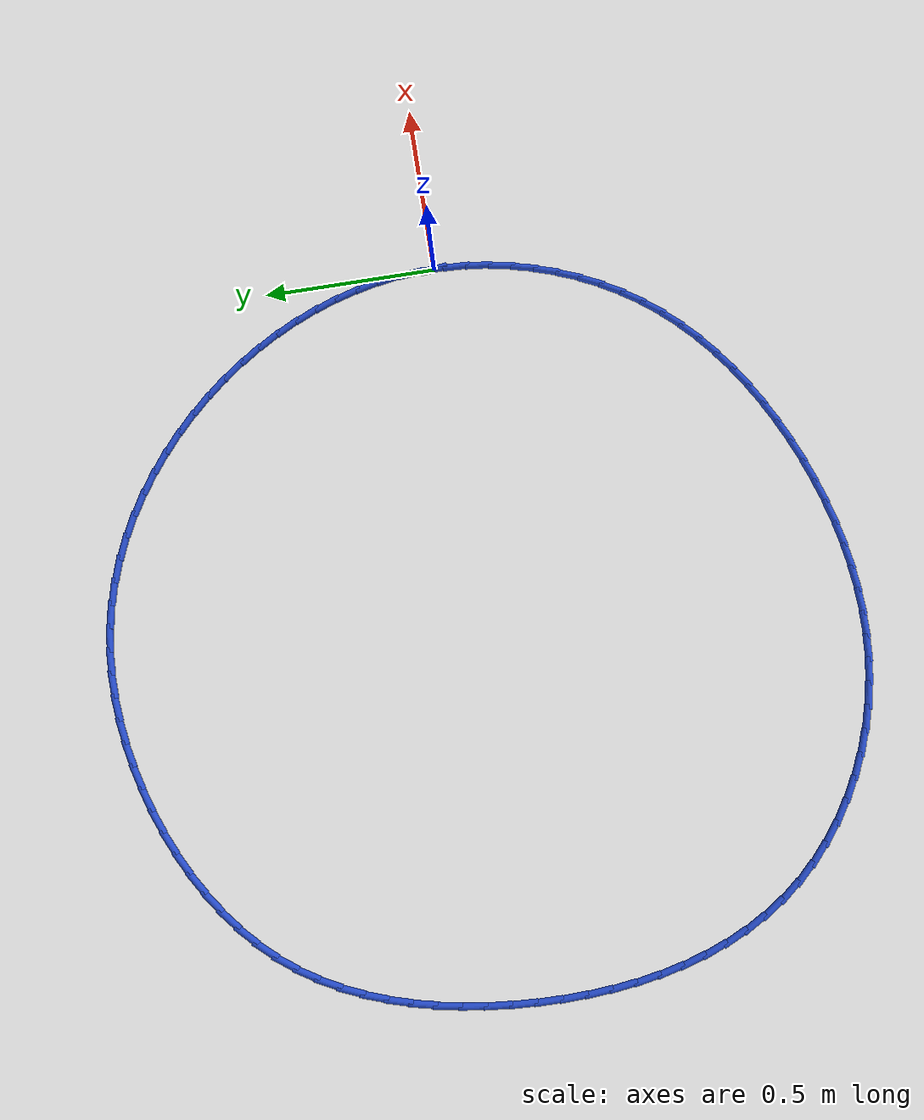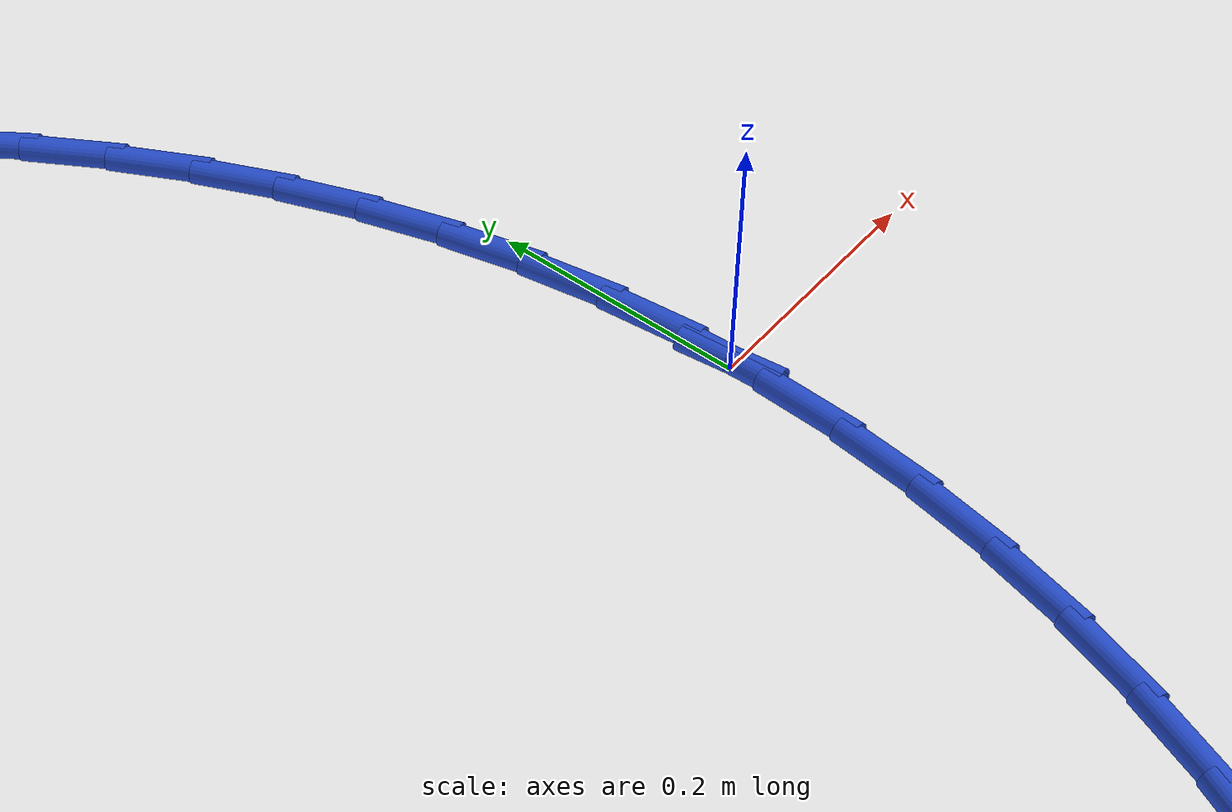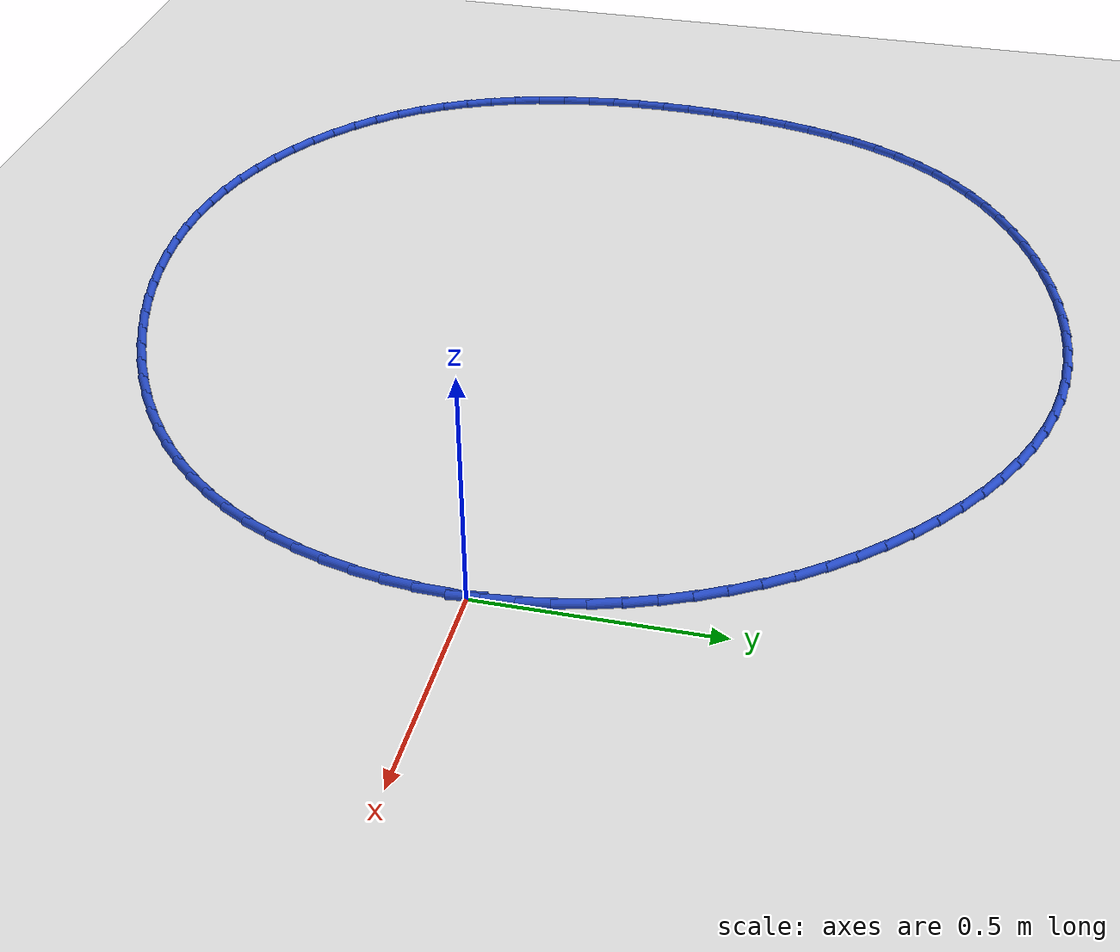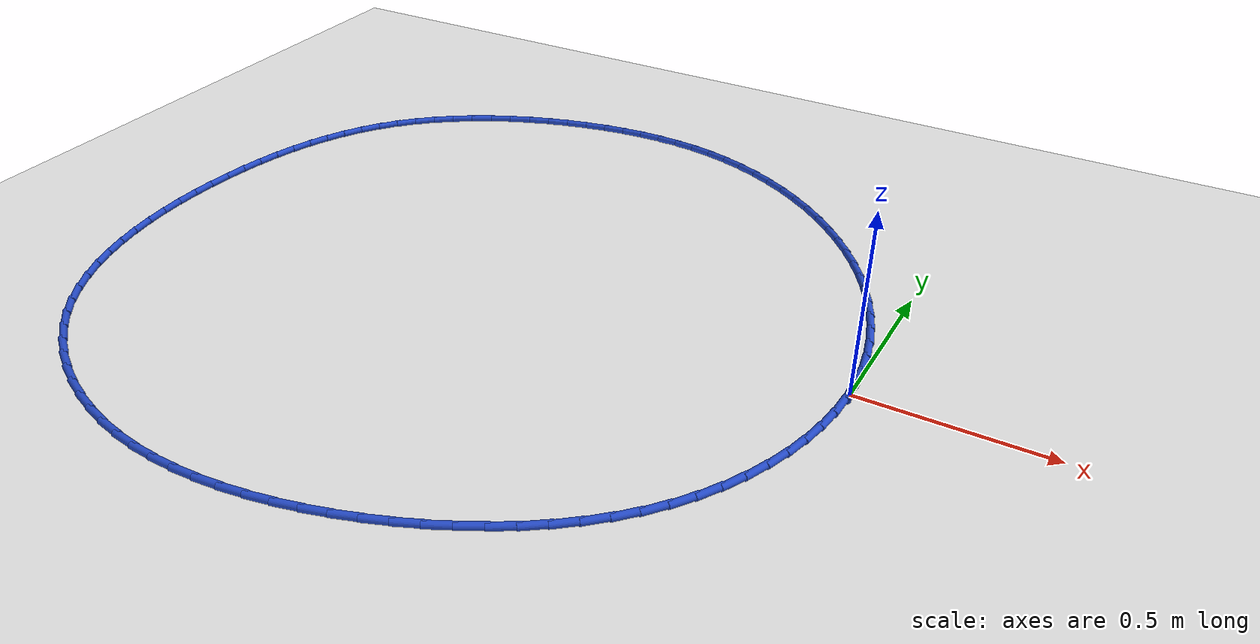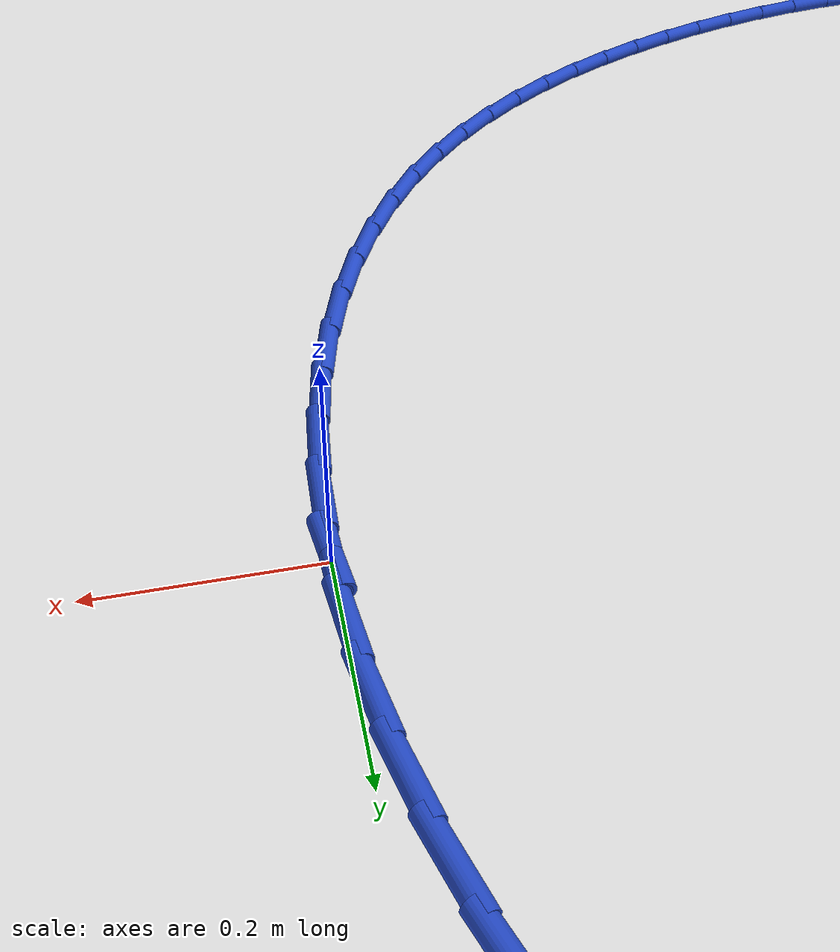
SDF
<sdf version="1.6">
 <world name="default">
  <light name="sun" type="directional">
   <pose>0 0 10 0 -0 0</pose>
   <diffuse>0.8 0.8 0.8 1</diffuse>
   <specular>0.2 0.2 0.2 1</specular>
   <attenuation>
    <range>1000</range>
    <constant>0.9</constant>
    <linear>0.01</linear>
    <quadratic>0.001</quadratic>
   </attenuation>
   <direction>-0.5 0.1 -0.9</direction>
  </light>
  <model name="ground_plane">
   <static>1</static>
   <link name="link">
    <collision name="collision">
     <geometry><plane><normal>0 0 1</normal><size>100 100</size></plane></geometry>
     <surface><friction><ode><mu>100</mu><mu2>50</mu2></ode></friction></surface>
    </collision>
    <visual name="visual">
     <cast_shadows>0</cast_shadows>
     <geometry><plane><normal>0 0 1</normal><size>100 100</size></plane></geometry>
     <material>
      <script><uri>file://media/materials/scripts/gazebo.material</uri><name>Gazebo/WhiteGlow</name></script>
     </material>
    </visual>
   </link>
  </model>
  <gravity>0 0 -9.8</gravity>
  <magnetic_field>6e-06 2.3e-05 -4.2e-05</magnetic_field>
  <atmosphere type="adiabatic"/>
  <physics name="default_physics" default="0" type="ode">
   <max_step_size>0.001</max_step_size>
   <real_time_factor>1</real_time_factor>
   <real_time_update_rate>1000</real_time_update_rate>
  </physics>
  <scene><ambient>0.4 0.4 0.4 1</ambient><background>0.7 0.7 0.7 1</background><shadows>1</shadows></scene>
  <spherical_coordinates>
   <surface_model>EARTH_WGS84</surface_model>
   <latitude_deg>0</latitude_deg>
   <longitude_deg>0</longitude_deg>
   <elevation>0</elevation>
   <heading_deg>0</heading_deg>
  </spherical_coordinates>
  <model name="line">
   <link name="link_0">
    <pose>3.8163916471489756e-17 -8.326672684688674e-17 0.01 0 1.57 -1.530909037281265</pose>
    <collision name="collision">
     <geometry><cylinder><radius>0.01</radius><length>0.08</length></cylinder></geometry>
    </collision>
    <visual name="visual">
     <material>
      <script><name>Gazebo/Blue</name><uri>file://media/materials/scripts/gazebo.material</uri></script>
     </material>
     <geometry><cylinder><radius>0.01</radius><length>0.08</length></cylinder></geometry>
    </visual>
   </link>
   <link name="link_1">
    <pose>-0.002643952143250231 0.06625042349123367 0.01 0 1.57 -1.4620696341195842</pose>
    <collision name="collision">
     <geometry><cylinder><radius>0.01</radius><length>0.08</length></cylinder></geometry>
    </collision>
    <visual name="visual">
     <material>
      <script><name>Gazebo/Blue</name><uri>file://media/materials/scripts/gazebo.material</uri></script>
     </material>
     <geometry><cylinder><radius>0.01</radius><length>0.08</length></cylinder></geometry>
    </visual>
   </link>
   <link name="link_2">
    <pose>-0.009822926464760387 0.13201774421860038 0.01 0 1.57 -1.3948912525738417</pose>
    <collision name="collision">
     <geometry><cylinder><radius>0.01</radius><length>0.08</length></cylinder></geometry>
    </collision>
    <visual name="visual">
     <material>
      <script><name>Gazebo/Blue</name><uri>file://media/materials/scripts/gazebo.material</uri></script>
     </material>
     <geometry><cylinder><radius>0.01</radius><length>0.08</length></cylinder></geometry>
    </visual>
   </link>
   <link name="link_3">
    <pose>-0.021395329228872627 0.1971255633562332 0.01 0 1.57 -1.3293901156058123</pose>
    <collision name="collision">
     <geometry><cylinder><radius>0.01</radius><length>0.08</length></cylinder></geometry>
    </collision>
    <visual name="visual">
     <material>
      <script><name>Gazebo/Blue</name><uri>file://media/materials/scripts/gazebo.material</uri></script>
     </material>
     <geometry><cylinder><radius>0.01</radius><length>0.08</length></cylinder></geometry>
    </visual>
   </link>
   <link name="link_4">
    <pose>-0.03721956669992915 0.26139748207826524 0.01 0 1.57 -1.2655247972778039</pose>
    <collision name="collision">
     <geometry><cylinder><radius>0.01</radius><length>0.08</length></cylinder></geometry>
    </collision>
    <visual name="visual">
     <material>
      <script><name>Gazebo/Blue</name><uri>file://media/materials/scripts/gazebo.material</uri></script>
     </material>
     <geometry><cylinder><radius>0.01</radius><length>0.08</length></cylinder></geometry>
    </visual>
   </link>
   <link name="link_5">
    <pose>-0.057154045142272174 0.32465710155882976 0.01 0 1.57 -1.2032058143764963</pose>
    <collision name="collision">
     <geometry><cylinder><radius>0.01</radius><length>0.08</length></cylinder></geometry>
    </collision>
    <visual name="visual">
     <material>
      <script><name>Gazebo/Blue</name><uri>file://media/materials/scripts/gazebo.material</uri></script>
     </material>
     <geometry><cylinder><radius>0.01</radius><length>0.08</length></cylinder></geometry>
    </visual>
   </link>
   <link name="link_6">
    <pose>-0.08105717082024384 0.3867280229720598 0.01 0 1.57 -1.142305219174879</pose>
    <collision name="collision">
     <geometry><cylinder><radius>0.01</radius><length>0.08</length></cylinder></geometry>
    </collision>
    <visual name="visual">
     <material>
      <script><name>Gazebo/Blue</name><uri>file://media/materials/scripts/gazebo.material</uri></script>
     </material>
     <geometry><cylinder><radius>0.01</radius><length>0.08</length></cylinder></geometry>
    </visual>
   </link>
   <link name="link_7">
    <pose>-0.10878734999818647 0.4474338474920887 0.01 0 1.57 -1.0826655391313575</pose>
    <collision name="collision">
     <geometry><cylinder><radius>0.01</radius><length>0.08</length></cylinder></geometry>
    </collision>
    <visual name="visual">
     <material>
      <script><name>Gazebo/Blue</name><uri>file://media/materials/scripts/gazebo.material</uri></script>
     </material>
     <geometry><cylinder><radius>0.01</radius><length>0.08</length></cylinder></geometry>
    </visual>
   </link>
   <link name="link_8">
    <pose>-0.1402029889404421 0.5065981762930496 0.01 0 1.57 -1.024107704134413</pose>
    <collision name="collision">
     <geometry><cylinder><radius>0.01</radius><length>0.08</length></cylinder></geometry>
    </collision>
    <visual name="visual">
     <material>
      <script><name>Gazebo/Blue</name><uri>file://media/materials/scripts/gazebo.material</uri></script>
     </material>
     <geometry><cylinder><radius>0.01</radius><length>0.08</length></cylinder></geometry>
    </visual>
   </link>
   <link name="link_9">
    <pose>-0.17516249391135308 0.5640446105490754 0.01 0 1.57 -0.966443917170568</pose>
    <collision name="collision">
     <geometry><cylinder><radius>0.01</radius><length>0.08</length></cylinder></geometry>
    </collision>
    <visual name="visual">
     <material>
      <script><name>Gazebo/Blue</name><uri>file://media/materials/scripts/gazebo.material</uri></script>
     </material>
     <geometry><cylinder><radius>0.01</radius><length>0.08</length></cylinder></geometry>
    </visual>
   </link>
   <link name="link_10">
    <pose>-0.21352241617242845 0.6195947874247035 0.01 0 1.57 -0.9095268368817235</pose>
    <collision name="collision">
     <geometry><cylinder><radius>0.01</radius><length>0.08</length></cylinder></geometry>
    </collision>
    <visual name="visual">
     <material>
      <script><name>Gazebo/Blue</name><uri>file://media/materials/scripts/gazebo.material</uri></script>
     </material>
     <geometry><cylinder><radius>0.01</radius><length>0.08</length></cylinder></geometry>
    </visual>
   </link>
   <link name="link_11">
    <pose>-0.2551088539434642 0.6730381015104505 0.01 0 1.57 -0.8530524095180355</pose>
    <collision name="collision">
     <geometry><cylinder><radius>0.01</radius><length>0.08</length></cylinder></geometry>
    </collision>
    <visual name="visual">
     <material>
      <script><name>Gazebo/Blue</name><uri>file://media/materials/scripts/gazebo.material</uri></script>
     </material>
     <geometry><cylinder><radius>0.01</radius><length>0.08</length></cylinder></geometry>
    </visual>
   </link>
   <link name="link_12">
    <pose>-0.29972300200922686 0.7241375805447174 0.01 0 1.57 -0.7966062513180978</pose>
    <collision name="collision">
     <geometry><cylinder><radius>0.01</radius><length>0.08</length></cylinder></geometry>
    </collision>
    <visual name="visual">
     <material>
      <script><name>Gazebo/Blue</name><uri>file://media/materials/scripts/gazebo.material</uri></script>
     </material>
     <geometry><cylinder><radius>0.01</radius><length>0.08</length></cylinder></geometry>
    </visual>
   </link>
   <link name="link_13">
    <pose>-0.34716532417411783 0.7726554783304563 0.01 0 1.57 -0.7397745130219954</pose>
    <collision name="collision">
     <geometry><cylinder><radius>0.01</radius><length>0.08</length></cylinder></geometry>
    </collision>
    <visual name="visual">
     <material>
      <script><name>Gazebo/Blue</name><uri>file://media/materials/scripts/gazebo.material</uri></script>
     </material>
     <geometry><cylinder><radius>0.01</radius><length>0.08</length></cylinder></geometry>
    </visual>
   </link>
   <link name="link_14">
    <pose>-0.397236284242538 0.8183540486706188 0.01 0 1.57 -0.6821466853637174</pose>
    <collision name="collision">
     <geometry><cylinder><radius>0.01</radius><length>0.08</length></cylinder></geometry>
    </collision>
    <visual name="visual">
     <material>
      <script><name>Gazebo/Blue</name><uri>file://media/materials/scripts/gazebo.material</uri></script>
     </material>
     <geometry><cylinder><radius>0.01</radius><length>0.08</length></cylinder></geometry>
    </visual>
   </link>
   <link name="link_15">
    <pose>-0.44973634601888834 0.8609955453681557 0.01 0 1.57 -0.6233168728572187</pose>
    <collision name="collision">
     <geometry><cylinder><radius>0.01</radius><length>0.08</length></cylinder></geometry>
    </collision>
    <visual name="visual">
     <material>
      <script><name>Gazebo/Blue</name><uri>file://media/materials/scripts/gazebo.material</uri></script>
     </material>
     <geometry><cylinder><radius>0.01</radius><length>0.08</length></cylinder></geometry>
    </visual>
   </link>
   <link name="link_16">
    <pose>-0.5044659733075701 0.9003422222260192 0.01 0 1.57 -0.5628867611481467</pose>
    <collision name="collision">
     <geometry><cylinder><radius>0.01</radius><length>0.08</length></cylinder></geometry>
    </collision>
    <visual name="visual">
     <material>
      <script><name>Gazebo/Blue</name><uri>file://media/materials/scripts/gazebo.material</uri></script>
     </material>
     <geometry><cylinder><radius>0.01</radius><length>0.08</length></cylinder></geometry>
    </visual>
   </link>
   <link name="link_17">
    <pose>-0.5612256299129844 0.9361563330471606 0.01 0 1.57 -0.5004711683062067</pose>
    <collision name="collision">
     <geometry><cylinder><radius>0.01</radius><length>0.08</length></cylinder></geometry>
    </collision>
    <visual name="visual">
     <material>
      <script><name>Gazebo/Blue</name><uri>file://media/materials/scripts/gazebo.material</uri></script>
     </material>
     <geometry><cylinder><radius>0.01</radius><length>0.08</length></cylinder></geometry>
    </visual>
   </link>
   <link name="link_18">
    <pose>-0.6198157796395322 0.9682001316345312 0.01 0 1.57 -0.43570712116881555</pose>
    <collision name="collision">
     <geometry><cylinder><radius>0.01</radius><length>0.08</length></cylinder></geometry>
    </collision>
    <visual name="visual">
     <material>
      <script><name>Gazebo/Blue</name><uri>file://media/materials/scripts/gazebo.material</uri></script>
     </material>
     <geometry><cylinder><radius>0.01</radius><length>0.08</length></cylinder></geometry>
    </visual>
   </link>
   <link name="link_19">
    <pose>-0.6800368862916144 0.9962358717910825 0.01 0 1.57 -0.36826736813479594</pose>
    <collision name="collision">
     <geometry><cylinder><radius>0.01</radius><length>0.08</length></cylinder></geometry>
    </collision>
    <visual name="visual">
     <material>
      <script><name>Gazebo/Blue</name><uri>file://media/materials/scripts/gazebo.material</uri></script>
     </material>
     <geometry><cylinder><radius>0.01</radius><length>0.08</length></cylinder></geometry>
    </visual>
   </link>
   <link name="link_20">
    <pose>-0.741689413673633 1.0200258073197668 0.01 0 1.57 -0.29787902295381585</pose>
    <collision name="collision">
     <geometry><cylinder><radius>0.01</radius><length>0.08</length></cylinder></geometry>
    </collision>
    <visual name="visual">
     <material>
      <script><name>Gazebo/Blue</name><uri>file://media/materials/scripts/gazebo.material</uri></script>
     </material>
     <geometry><cylinder><radius>0.01</radius><length>0.08</length></cylinder></geometry>
    </visual>
   </link>
   <link name="link_21">
    <pose>-0.8045738255899875 1.039332192023534 0.01 0 1.57 -0.22445217431897305</pose>
    <collision name="collision">
     <geometry><cylinder><radius>0.01</radius><length>0.08</length></cylinder></geometry>
    </collision>
    <visual name="visual">
     <material>
      <script><name>Gazebo/Blue</name><uri>file://media/materials/scripts/gazebo.material</uri></script>
     </material>
     <geometry><cylinder><radius>0.01</radius><length>0.08</length></cylinder></geometry>
    </visual>
   </link>
   <link name="link_22">
    <pose>-0.8684905688038664 1.0539243154360542 0.01 0 1.57 -0.15074133616258795</pose>
    <collision name="collision">
     <geometry><cylinder><radius>0.01</radius><length>0.08</length></cylinder></geometry>
    </collision>
    <visual name="visual">
     <material>
      <script><name>Gazebo/Blue</name><uri>file://media/materials/scripts/gazebo.material</uri></script>
     </material>
     <geometry><cylinder><radius>0.01</radius><length>0.08</length></cylinder></geometry>
    </visual>
   </link>
   <link name="link_23">
    <pose>-0.9332396351716259 1.0637592824634052 0.01 0 1.57 -0.07995076558486094</pose>
    <collision name="collision">
     <geometry><cylinder><radius>0.01</radius><length>0.08</length></cylinder></geometry>
    </collision>
    <visual name="visual">
     <material>
      <script><name>Gazebo/Blue</name><uri>file://media/materials/scripts/gazebo.material</uri></script>
     </material>
     <geometry><cylinder><radius>0.01</radius><length>0.08</length></cylinder></geometry>
    </visual>
   </link>
   <link name="link_24">
    <pose>-0.9986205236462393 1.0689977008524354 0.01 0 1.57 -0.012347496962693055</pose>
    <collision name="collision">
     <geometry><cylinder><radius>0.01</radius><length>0.08</length></cylinder></geometry>
    </collision>
    <visual name="visual">
     <material>
      <script><name>Gazebo/Blue</name><uri>file://media/materials/scripts/gazebo.material</uri></script>
     </material>
     <geometry><cylinder><radius>0.01</radius><length>0.08</length></cylinder></geometry>
    </visual>
   </link>
   <link name="link_25">
    <pose>-1.0644327085248244 1.0698103579051677 0.01 0 1.57 0.05207527017609901</pose>
    <collision name="collision">
     <geometry><cylinder><radius>0.01</radius><length>0.08</length></cylinder></geometry>
    </collision>
    <visual name="visual">
     <material>
      <script><name>Gazebo/Blue</name><uri>file://media/materials/scripts/gazebo.material</uri></script>
     </material>
     <geometry><cylinder><radius>0.01</radius><length>0.08</length></cylinder></geometry>
    </visual>
   </link>
   <link name="link_26">
    <pose>-1.1304756641044964 1.066368040923623 0.01 0 1.57 0.11342269647901367</pose>
    <collision name="collision">
     <geometry><cylinder><radius>0.01</radius><length>0.08</length></cylinder></geometry>
    </collision>
    <visual name="visual">
     <material>
      <script><name>Gazebo/Blue</name><uri>file://media/materials/scripts/gazebo.material</uri></script>
     </material>
     <geometry><cylinder><radius>0.01</radius><length>0.08</length></cylinder></geometry>
    </visual>
   </link>
   <link name="link_27">
    <pose>-1.1965488646823719 1.0588415372098237 0.01 0 1.57 0.17187451692679842</pose>
    <collision name="collision">
     <geometry><cylinder><radius>0.01</radius><length>0.08</length></cylinder></geometry>
    </collision>
    <visual name="visual">
     <material>
      <script><name>Gazebo/Blue</name><uri>file://media/materials/scripts/gazebo.material</uri></script>
     </material>
     <geometry><cylinder><radius>0.01</radius><length>0.08</length></cylinder></geometry>
    </visual>
   </link>
   <link name="link_28">
    <pose>-1.2624517845555667 1.0474016340657908 0.01 0 1.57 0.22766390455255453</pose>
    <collision name="collision">
     <geometry><cylinder><radius>0.01</radius><length>0.08</length></cylinder></geometry>
    </collision>
    <visual name="visual">
     <material>
      <script><name>Gazebo/Blue</name><uri>file://media/materials/scripts/gazebo.material</uri></script>
     </material>
     <geometry><cylinder><radius>0.01</radius><length>0.08</length></cylinder></geometry>
    </visual>
   </link>
   <link name="link_29">
    <pose>-1.327983898021197 1.0322191187935463 0.01 0 1.57 0.28127514599409953</pose>
    <collision name="collision">
     <geometry><cylinder><radius>0.01</radius><length>0.08</length></cylinder></geometry>
    </collision>
    <visual name="visual">
     <material>
      <script><name>Gazebo/Blue</name><uri>file://media/materials/scripts/gazebo.material</uri></script>
     </material>
     <geometry><cylinder><radius>0.01</radius><length>0.08</length></cylinder></geometry>
    </visual>
   </link>
   <link name="link_30">
    <pose>-1.3929293227973623 1.0134540853700469 0.01 0 1.57 0.3348487791724157</pose>
    <collision name="collision">
     <geometry><cylinder><radius>0.01</radius><length>0.08</length></cylinder></geometry>
    </collision>
    <visual name="visual">
     <material>
      <script><name>Gazebo/Blue</name><uri>file://media/materials/scripts/gazebo.material</uri></script>
     </material>
     <geometry><cylinder><radius>0.01</radius><length>0.08</length></cylinder></geometry>
    </visual>
   </link>
   <link name="link_31">
    <pose>-1.4569465889415467 0.9911791766753908 0.01 0 1.57 0.3898281086680879</pose>
    <collision name="collision">
     <geometry><cylinder><radius>0.01</radius><length>0.08</length></cylinder></geometry>
    </collision>
    <visual name="visual">
     <material>
      <script><name>Gazebo/Blue</name><uri>file://media/materials/scripts/gazebo.material</uri></script>
     </material>
     <geometry><cylinder><radius>0.01</radius><length>0.08</length></cylinder></geometry>
    </visual>
   </link>
   <link name="link_32">
    <pose>-1.5196328310039946 0.9654242837426877 0.01 0 1.57 0.4468310117469735</pose>
    <collision name="collision">
     <geometry><cylinder><radius>0.01</radius><length>0.08</length></cylinder></geometry>
    </collision>
    <visual name="visual">
     <material>
      <script><name>Gazebo/Blue</name><uri>file://media/materials/scripts/gazebo.material</uri></script>
     </material>
     <geometry><cylinder><radius>0.01</radius><length>0.08</length></cylinder></geometry>
    </visual>
   </link>
   <link name="link_33">
    <pose>-1.5805847660010237 0.9362190068615147 0.01 0 1.57 0.5064671607837328</pose>
    <collision name="collision">
     <geometry><cylinder><radius>0.01</radius><length>0.08</length></cylinder></geometry>
    </collision>
    <visual name="visual">
     <material>
      <script><name>Gazebo/Blue</name><uri>file://media/materials/scripts/gazebo.material</uri></script>
     </material>
     <geometry><cylinder><radius>0.01</radius><length>0.08</length></cylinder></geometry>
    </visual>
   </link>
   <link name="link_34">
    <pose>-1.6393991109489514 0.9035929463214504 0.01 0 1.57 0.5693412011538284</pose>
    <collision name="collision">
     <geometry><cylinder><radius>0.01</radius><length>0.08</length></cylinder></geometry>
    </collision>
    <visual name="visual">
     <material>
      <script><name>Gazebo/Blue</name><uri>file://media/materials/scripts/gazebo.material</uri></script>
     </material>
     <geometry><cylinder><radius>0.01</radius><length>0.08</length></cylinder></geometry>
    </visual>
   </link>
   <link name="link_35">
    <pose>-1.695672582864094 0.8675757024120716 0.01 0 1.57 0.6360412628477423</pose>
    <collision name="collision">
     <geometry><cylinder><radius>0.01</radius><length>0.08</length></cylinder></geometry>
    </collision>
    <visual name="visual">
     <material>
      <script><name>Gazebo/Blue</name><uri>file://media/materials/scripts/gazebo.material</uri></script>
     </material>
     <geometry><cylinder><radius>0.01</radius><length>0.08</length></cylinder></geometry>
    </visual>
   </link>
   <link name="link_36">
    <pose>-1.7490018987627693 0.828196875422957 0.01 0 1.57 0.7071157378195648</pose>
    <collision name="collision">
     <geometry><cylinder><radius>0.01</radius><length>0.08</length></cylinder></geometry>
    </collision>
    <visual name="visual">
     <material>
      <script><name>Gazebo/Blue</name><uri>file://media/materials/scripts/gazebo.material</uri></script>
     </material>
     <geometry><cylinder><radius>0.01</radius><length>0.08</length></cylinder></geometry>
    </visual>
   </link>
   <link name="link_37">
    <pose>-1.7989837756612945 0.7854860656436834 0.01 0 1.57 0.7830352844154511</pose>
    <collision name="collision">
     <geometry><cylinder><radius>0.01</radius><length>0.08</length></cylinder></geometry>
    </collision>
    <visual name="visual">
     <material>
      <script><name>Gazebo/Blue</name><uri>file://media/materials/scripts/gazebo.material</uri></script>
     </material>
     <geometry><cylinder><radius>0.01</radius><length>0.08</length></cylinder></geometry>
    </visual>
   </link>
   <link name="link_38">
    <pose>-1.8452149305759862 0.7394728733638287 0.01 0 1.57 0.8641380268405594</pose>
    <collision name="collision">
     <geometry><cylinder><radius>0.01</radius><length>0.08</length></cylinder></geometry>
    </collision>
    <visual name="visual">
     <material>
      <script><name>Gazebo/Blue</name><uri>file://media/materials/scripts/gazebo.material</uri></script>
     </material>
     <geometry><cylinder><radius>0.01</radius><length>0.08</length></cylinder></geometry>
    </visual>
   </link>
   <link name="link_39">
    <pose>-1.8872920807172522 0.6901868989548863 0.01 0 1.57 0.9488269402462279</pose>
    <collision name="collision">
     <geometry><cylinder><radius>0.01</radius><length>0.08</length></cylinder></geometry>
    </collision>
    <visual name="visual">
     <material>
      <script><name>Gazebo/Blue</name><uri>file://media/materials/scripts/gazebo.material</uri></script>
     </material>
     <geometry><cylinder><radius>0.01</radius><length>0.08</length></cylinder></geometry>
    </visual>
   </link>
   <link name="link_40">
    <pose>-1.9249175587900307 0.6377023174883479 0.01 0 1.57 1.0301004461798002</pose>
    <collision name="collision">
     <geometry><cylinder><radius>0.01</radius><length>0.08</length></cylinder></geometry>
    </collision>
    <visual name="visual">
     <material>
      <script><name>Gazebo/Blue</name><uri>file://media/materials/scripts/gazebo.material</uri></script>
     </material>
     <geometry><cylinder><radius>0.01</radius><length>0.08</length></cylinder></geometry>
    </visual>
   </link>
   <link name="link_41">
    <pose>-1.958200734635484 0.5822650928278343 0.01 0 1.57 1.105813714028026</pose>
    <collision name="collision">
     <geometry><cylinder><radius>0.01</radius><length>0.08</length></cylinder></geometry>
    </collision>
    <visual name="visual">
     <material>
      <script><name>Gazebo/Blue</name><uri>file://media/materials/scripts/gazebo.material</uri></script>
     </material>
     <geometry><cylinder><radius>0.01</radius><length>0.08</length></cylinder></geometry>
    </visual>
   </link>
   <link name="link_42">
    <pose>-1.9873490209660287 0.5241625675342194 0.01 0 1.57 1.1757149074665656</pose>
    <collision name="collision">
     <geometry><cylinder><radius>0.01</radius><length>0.08</length></cylinder></geometry>
    </collision>
    <visual name="visual">
     <material>
      <script><name>Gazebo/Blue</name><uri>file://media/materials/scripts/gazebo.material</uri></script>
     </material>
     <geometry><cylinder><radius>0.01</radius><length>0.08</length></cylinder></geometry>
    </visual>
   </link>
   <link name="link_43">
    <pose>-2.0125698304940824 0.4636820841683744 0.01 0 1.57 1.2398155956113963</pose>
    <collision name="collision">
     <geometry><cylinder><radius>0.01</radius><length>0.08</length></cylinder></geometry>
    </collision>
    <visual name="visual">
     <material>
      <script><name>Gazebo/Blue</name><uri>file://media/materials/scripts/gazebo.material</uri></script>
     </material>
     <geometry><cylinder><radius>0.01</radius><length>0.08</length></cylinder></geometry>
    </visual>
   </link>
   <link name="link_44">
    <pose>-2.034070575932063 0.40111098529117273 0.01 0 1.57 1.298316790955503</pose>
    <collision name="collision">
     <geometry><cylinder><radius>0.01</radius><length>0.08</length></cylinder></geometry>
    </collision>
    <visual name="visual">
     <material>
      <script><name>Gazebo/Blue</name><uri>file://media/materials/scripts/gazebo.material</uri></script>
     </material>
     <geometry><cylinder><radius>0.01</radius><length>0.08</length></cylinder></geometry>
    </visual>
   </link>
   <link name="link_45">
    <pose>-2.052058669992388 0.33673661346348677 0.01 0 1.57 1.3515407698476007</pose>
    <collision name="collision">
     <geometry><cylinder><radius>0.01</radius><length>0.08</length></cylinder></geometry>
    </collision>
    <visual name="visual">
     <material>
      <script><name>Gazebo/Blue</name><uri>file://media/materials/scripts/gazebo.material</uri></script>
     </material>
     <geometry><cylinder><radius>0.01</radius><length>0.08</length></cylinder></geometry>
    </visual>
   </link>
   <link name="link_46">
    <pose>-2.066741525387473 0.27084631124618896 0.01 0 1.57 1.399875818671298</pose>
    <collision name="collision">
     <geometry><cylinder><radius>0.01</radius><length>0.08</length></cylinder></geometry>
    </collision>
    <visual name="visual">
     <material>
      <script><name>Gazebo/Blue</name><uri>file://media/materials/scripts/gazebo.material</uri></script>
     </material>
     <geometry><cylinder><radius>0.01</radius><length>0.08</length></cylinder></geometry>
    </visual>
   </link>
   <link name="link_47">
    <pose>-2.078326554829736 0.20372742120015225 0.01 0 1.57 1.4437355180709002</pose>
    <collision name="collision">
     <geometry><cylinder><radius>0.01</radius><length>0.08</length></cylinder></geometry>
    </collision>
    <visual name="visual">
     <material>
      <script><name>Gazebo/Blue</name><uri>file://media/materials/scripts/gazebo.material</uri></script>
     </material>
     <geometry><cylinder><radius>0.01</radius><length>0.08</length></cylinder></geometry>
    </visual>
   </link>
   <link name="link_48">
    <pose>-2.0870211710315956 0.13566728588624943 0.01 0 1.57 1.4835510781904215</pose>
    <collision name="collision">
     <geometry><cylinder><radius>0.01</radius><length>0.08</length></cylinder></geometry>
    </collision>
    <visual name="visual">
     <material>
      <script><name>Gazebo/Blue</name><uri>file://media/materials/scripts/gazebo.material</uri></script>
     </material>
     <geometry><cylinder><radius>0.01</radius><length>0.08</length></cylinder></geometry>
    </visual>
   </link>
   <link name="link_49">
    <pose>-2.0930313999064003 0.06695326642023304 0.01 0 1.57 1.5215568953335152</pose>
    <collision name="collision">
     <geometry><cylinder><radius>0.01</radius><length>0.08</length></cylinder></geometry>
    </collision>
    <visual name="visual">
     <material>
      <script><name>Gazebo/Blue</name><uri>file://media/materials/scripts/gazebo.material</uri></script>
     </material>
     <geometry><cylinder><radius>0.01</radius><length>0.08</length></cylinder></geometry>
    </visual>
   </link>
   <link name="link_50">
    <pose>-2.0964355539990787 -0.002125567322480804 0.01 0 1.57 1.5614340659864638</pose>
    <collision name="collision">
     <geometry><cylinder><radius>0.01</radius><length>0.08</length></cylinder></geometry>
    </collision>
    <visual name="visual">
     <material>
      <script><name>Gazebo/Blue</name><uri>file://media/materials/scripts/gazebo.material</uri></script>
     </material>
     <geometry><cylinder><radius>0.01</radius><length>0.08</length></cylinder></geometry>
    </visual>
   </link>
   <link name="link_51">
    <pose>-2.097082987431946 -0.07127708208382696 0.01 0 1.57 -1.537677721611164</pose>
    <collision name="collision">
     <geometry><cylinder><radius>0.01</radius><length>0.08</length></cylinder></geometry>
    </collision>
    <visual name="visual">
     <material>
      <script><name>Gazebo/Blue</name><uri>file://media/materials/scripts/gazebo.material</uri></script>
     </material>
     <geometry><cylinder><radius>0.01</radius><length>0.08</length></cylinder></geometry>
    </visual>
   </link>
   <link name="link_52">
    <pose>-2.094799229191008 -0.14020882583384986 0.01 0 1.57 -1.4921884160561962</pose>
    <collision name="collision">
     <geometry><cylinder><radius>0.01</radius><length>0.08</length></cylinder></geometry>
    </collision>
    <visual name="visual">
     <material>
      <script><name>Gazebo/Blue</name><uri>file://media/materials/scripts/gazebo.material</uri></script>
     </material>
     <geometry><cylinder><radius>0.01</radius><length>0.08</length></cylinder></geometry>
    </visual>
   </link>
   <link name="link_53">
    <pose>-2.0894098082622703 -0.20862834654259396 0.01 0 1.57 -1.4432724410715967</pose>
    <collision name="collision">
     <geometry><cylinder><radius>0.01</radius><length>0.08</length></cylinder></geometry>
    </collision>
    <visual name="visual">
     <material>
      <script><name>Gazebo/Blue</name><uri>file://media/materials/scripts/gazebo.material</uri></script>
     </material>
     <geometry><cylinder><radius>0.01</radius><length>0.08</length></cylinder></geometry>
    </visual>
   </link>
   <link name="link_54">
    <pose>-2.080740253631739 -0.2762431921801036 0.01 0 1.57 -1.3905058686357403</pose>
    <collision name="collision">
     <geometry><cylinder><radius>0.01</radius><length>0.08</length></cylinder></geometry>
    </collision>
    <visual name="visual">
     <material>
      <script><name>Gazebo/Blue</name><uri>file://media/materials/scripts/gazebo.material</uri></script>
     </material>
     <geometry><cylinder><radius>0.01</radius><length>0.08</length></cylinder></geometry>
    </visual>
   </link>
   <link name="link_55">
    <pose>-2.0686160942854204 -0.3427609107164233 0.01 0 1.57 -1.333473905689005</pose>
    <collision name="collision">
     <geometry><cylinder><radius>0.01</radius><length>0.08</length></cylinder></geometry>
    </collision>
    <visual name="visual">
     <material>
      <script><name>Gazebo/Blue</name><uri>file://media/materials/scripts/gazebo.material</uri></script>
     </material>
     <geometry><cylinder><radius>0.01</radius><length>0.08</length></cylinder></geometry>
    </visual>
   </link>
   <link name="link_56">
    <pose>-2.0528628592093203 -0.4078890501215973 0.01 0 1.57 -1.2717949397142052</pose>
    <collision name="collision">
     <geometry><cylinder><radius>0.01</radius><length>0.08</length></cylinder></geometry>
    </collision>
    <visual name="visual">
     <material>
      <script><name>Gazebo/Blue</name><uri>file://media/materials/scripts/gazebo.material</uri></script>
     </material>
     <geometry><cylinder><radius>0.01</radius><length>0.08</length></cylinder></geometry>
    </visual>
   </link>
   <link name="link_57">
    <pose>-2.0333060773894434 -0.4713351583656702 0.01 0 1.57 -1.2051557846412913</pose>
    <collision name="collision">
     <geometry><cylinder><radius>0.01</radius><length>0.08</length></cylinder></geometry>
    </collision>
    <visual name="visual">
     <material>
      <script><name>Gazebo/Blue</name><uri>file://media/materials/scripts/gazebo.material</uri></script>
     </material>
     <geometry><cylinder><radius>0.01</radius><length>0.08</length></cylinder></geometry>
    </visual>
   </link>
   <link name="link_58">
    <pose>-2.009771277811797 -0.5328067834186857 0.01 0 1.57 -1.1333590077042228</pose>
    <collision name="collision">
     <geometry><cylinder><radius>0.01</radius><length>0.08</length></cylinder></geometry>
    </collision>
    <visual name="visual">
     <material>
      <script><name>Gazebo/Blue</name><uri>file://media/materials/scripts/gazebo.material</uri></script>
     </material>
     <geometry><cylinder><radius>0.01</radius><length>0.08</length></cylinder></geometry>
    </visual>
   </link>
   <link name="link_59">
    <pose>-1.9820839894623865 -0.5920114732506898 0.01 0 1.57 -1.0563806306505221</pose>
    <collision name="collision">
     <geometry><cylinder><radius>0.01</radius><length>0.08</length></cylinder></geometry>
    </collision>
    <visual name="visual">
     <material>
      <script><name>Gazebo/Blue</name><uri>file://media/materials/scripts/gazebo.material</uri></script>
     </material>
     <geometry><cylinder><radius>0.01</radius><length>0.08</length></cylinder></geometry>
    </visual>
   </link>
   <link name="link_60">
    <pose>-1.9500697413272168 -0.6486567758317259 0.01 0 1.57 -0.9744320923078408</pose>
    <collision name="collision">
     <geometry><cylinder><radius>0.01</radius><length>0.08</length></cylinder></geometry>
    </collision>
    <visual name="visual">
     <material>
      <script><name>Gazebo/Blue</name><uri>file://media/materials/scripts/gazebo.material</uri></script>
     </material>
     <geometry><cylinder><radius>0.01</radius><length>0.08</length></cylinder></geometry>
    </visual>
   </link>
   <link name="link_61">
    <pose>-1.9135540623922953 -0.7024502391318386 0.01 0 1.57 -0.8882058335487912</pose>
    <collision name="collision">
     <geometry><cylinder><radius>0.01</radius><length>0.08</length></cylinder></geometry>
    </collision>
    <visual name="visual">
     <material>
      <script><name>Gazebo/Blue</name><uri>file://media/materials/scripts/gazebo.material</uri></script>
     </material>
     <geometry><cylinder><radius>0.01</radius><length>0.08</length></cylinder></geometry>
    </visual>
   </link>
   <link name="link_62">
    <pose>-1.8723766038538159 -0.7531018305824446 0.01 0 1.57 -0.8024817896569515</pose>
    <collision name="collision">
     <geometry><cylinder><radius>0.01</radius><length>0.08</length></cylinder></geometry>
    </collision>
    <visual name="visual">
     <material>
      <script><name>Gazebo/Blue</name><uri>file://media/materials/scripts/gazebo.material</uri></script>
     </material>
     <geometry><cylinder><radius>0.01</radius><length>0.08</length></cylinder></geometry>
    </visual>
   </link>
   <link name="link_63">
    <pose>-1.8266913011464057 -0.8003753617770757 0.01 0 1.57 -0.7210783823807659</pose>
    <collision name="collision">
     <geometry><cylinder><radius>0.01</radius><length>0.08</length></cylinder></geometry>
    </collision>
    <visual name="visual">
     <material>
      <script><name>Gazebo/Blue</name><uri>file://media/materials/scripts/gazebo.material</uri></script>
     </material>
     <geometry><cylinder><radius>0.01</radius><length>0.08</length></cylinder></geometry>
    </visual>
   </link>
   <link name="link_64">
    <pose>-1.7769606347417422 -0.8440875052133854 0.01 0 1.57 -0.6434316956786207</pose>
    <collision name="collision">
     <geometry><cylinder><radius>0.01</radius><length>0.08</length></cylinder></geometry>
    </collision>
    <visual name="visual">
     <material>
      <script><name>Gazebo/Blue</name><uri>file://media/materials/scripts/gazebo.material</uri></script>
     </material>
     <geometry><cylinder><radius>0.01</radius><length>0.08</length></cylinder></geometry>
    </visual>
   </link>
   <link name="link_65">
    <pose>-1.723660059359195 -0.8840571561778616 0.01 0 1.57 -0.5687246870093867</pose>
    <collision name="collision">
     <geometry><cylinder><radius>0.01</radius><length>0.08</length></cylinder></geometry>
    </collision>
    <visual name="visual">
     <material>
      <script><name>Gazebo/Blue</name><uri>file://media/materials/scripts/gazebo.material</uri></script>
     </material>
     <geometry><cylinder><radius>0.01</radius><length>0.08</length></cylinder></geometry>
    </visual>
   </link>
   <link name="link_66">
    <pose>-1.6672650297181335 -0.9201032099569919 0.01 0 1.57 -0.4961006620740205</pose>
    <collision name="collision">
     <geometry><cylinder><radius>0.01</radius><length>0.08</length></cylinder></geometry>
    </collision>
    <visual name="visual">
     <material>
      <script><name>Gazebo/Blue</name><uri>file://media/materials/scripts/gazebo.material</uri></script>
     </material>
     <geometry><cylinder><radius>0.01</radius><length>0.08</length></cylinder></geometry>
    </visual>
   </link>
   <link name="link_67">
    <pose>-1.6082510005379278 -0.9520445618372645 0.01 0 1.57 -0.424683166863156</pose>
    <collision name="collision">
     <geometry><cylinder><radius>0.01</radius><length>0.08</length></cylinder></geometry>
    </collision>
    <visual name="visual">
     <material>
      <script><name>Gazebo/Blue</name><uri>file://media/materials/scripts/gazebo.material</uri></script>
     </material>
     <geometry><cylinder><radius>0.01</radius><length>0.08</length></cylinder></geometry>
    </visual>
   </link>
   <link name="link_68">
    <pose>-1.5470934265379472 -0.9797001071051674 0.01 0 1.57 -0.3535835967669814</pose>
    <collision name="collision">
     <geometry><cylinder><radius>0.01</radius><length>0.08</length></cylinder></geometry>
    </collision>
    <visual name="visual">
     <material>
      <script><name>Gazebo/Blue</name><uri>file://media/materials/scripts/gazebo.material</uri></script>
     </material>
     <geometry><cylinder><radius>0.01</radius><length>0.08</length></cylinder></geometry>
    </visual>
   </link>
   <link name="link_69">
    <pose>-1.4842677624375613 -1.0028887410471878 0.01 0 1.57 -0.28193106569952503</pose>
    <collision name="collision">
     <geometry><cylinder><radius>0.01</radius><length>0.08</length></cylinder></geometry>
    </collision>
    <visual name="visual">
     <material>
      <script><name>Gazebo/Blue</name><uri>file://media/materials/scripts/gazebo.material</uri></script>
     </material>
     <geometry><cylinder><radius>0.01</radius><length>0.08</length></cylinder></geometry>
    </visual>
   </link>
   <link name="link_70">
    <pose>-1.4202472494760525 -1.0214320413091083 0.01 0 1.57 -0.21051091733298402</pose>
    <collision name="collision">
     <geometry><cylinder><radius>0.01</radius><length>0.08</length></cylinder></geometry>
    </collision>
    <visual name="visual">
     <material>
      <script><name>Gazebo/Blue</name><uri>file://media/materials/scripts/gazebo.material</uri></script>
     </material>
     <geometry><cylinder><radius>0.01</radius><length>0.08</length></cylinder></geometry>
    </visual>
   </link>
   <link name="link_71">
    <pose>-1.3553905832845594 -1.0352903952229735 0.01 0 1.57 -0.14159320904173237</pose>
    <collision name="collision">
     <geometry><cylinder><radius>0.01</radius><length>0.08</length></cylinder></geometry>
    </collision>
    <visual name="visual">
     <material>
      <script><name>Gazebo/Blue</name><uri>file://media/materials/scripts/gazebo.material</uri></script>
     </material>
     <geometry><cylinder><radius>0.01</radius><length>0.08</length></cylinder></geometry>
    </visual>
   </link>
   <link name="link_72">
    <pose>-1.2898886874339268 -1.0446275011637387 0.01 0 1.57 -0.07558356807866556</pose>
    <collision name="collision">
     <geometry><cylinder><radius>0.01</radius><length>0.08</length></cylinder></geometry>
    </collision>
    <visual name="visual">
     <material>
      <script><name>Gazebo/Blue</name><uri>file://media/materials/scripts/gazebo.material</uri></script>
     </material>
     <geometry><cylinder><radius>0.01</radius><length>0.08</length></cylinder></geometry>
    </visual>
   </link>
   <link name="link_73">
    <pose>-1.2239191382973384 -1.0496232320271504 0.01 0 1.57 -0.012589636499419715</pose>
    <collision name="collision">
     <geometry><cylinder><radius>0.01</radius><length>0.08</length></cylinder></geometry>
    </collision>
    <visual name="visual">
     <material>
      <script><name>Gazebo/Blue</name><uri>file://media/materials/scripts/gazebo.material</uri></script>
     </material>
     <geometry><cylinder><radius>0.01</radius><length>0.08</length></cylinder></geometry>
    </visual>
   </link>
   <link name="link_74">
    <pose>-1.1576595122479763 -1.0504574607089543 0.01 0 1.57 0.04738502066024472</pose>
    <collision name="collision">
     <geometry><cylinder><radius>0.01</radius><length>0.08</length></cylinder></geometry>
    </collision>
    <visual name="visual">
     <material>
      <script><name>Gazebo/Blue</name><uri>file://media/materials/scripts/gazebo.material</uri></script>
     </material>
     <geometry><cylinder><radius>0.01</radius><length>0.08</length></cylinder></geometry>
    </visual>
   </link>
   <link name="link_75">
    <pose>-1.091287385659024 -1.0473100601048968 0.01 0 1.57 0.10442149091661247</pose>
    <collision name="collision">
     <geometry><cylinder><radius>0.01</radius><length>0.08</length></cylinder></geometry>
    </collision>
    <visual name="visual">
     <material>
      <script><name>Gazebo/Blue</name><uri>file://media/materials/scripts/gazebo.material</uri></script>
     </material>
     <geometry><cylinder><radius>0.01</radius><length>0.08</length></cylinder></geometry>
    </visual>
   </link>
   <link name="link_76">
    <pose>-1.0249803349036628 -1.040360903110723 0.01 0 1.57 0.1586661353684769</pose>
    <collision name="collision">
     <geometry><cylinder><radius>0.01</radius><length>0.08</length></cylinder></geometry>
    </collision>
    <visual name="visual">
     <material>
      <script><name>Gazebo/Blue</name><uri>file://media/materials/scripts/gazebo.material</uri></script>
     </material>
     <geometry><cylinder><radius>0.01</radius><length>0.08</length></cylinder></geometry>
    </visual>
   </link>
   <link name="link_77">
    <pose>-0.9589159363550759 -1.0297898626221793 0.01 0 1.57 0.21031315669032014</pose>
    <collision name="collision">
     <geometry><cylinder><radius>0.01</radius><length>0.08</length></cylinder></geometry>
    </collision>
    <visual name="visual">
     <material>
      <script><name>Gazebo/Blue</name><uri>file://media/materials/scripts/gazebo.material</uri></script>
     </material>
     <geometry><cylinder><radius>0.01</radius><length>0.08</length></cylinder></geometry>
    </visual>
   </link>
   <link name="link_78">
    <pose>-0.8932717663864456 -1.0157768115350119 0.01 0 1.57 0.25959011029067597</pose>
    <collision name="collision">
     <geometry><cylinder><radius>0.01</radius><length>0.08</length></cylinder></geometry>
    </collision>
    <visual name="visual">
     <material>
      <script><name>Gazebo/Blue</name><uri>file://media/materials/scripts/gazebo.material</uri></script>
     </material>
     <geometry><cylinder><radius>0.01</radius><length>0.08</length></cylinder></geometry>
    </visual>
   </link>
   <link name="link_79">
    <pose>-0.8282254013709544 -0.9985016227449659 0.01 0 1.57 0.30674667579412684</pose>
    <collision name="collision">
     <geometry><cylinder><radius>0.01</radius><length>0.08</length></cylinder></geometry>
    </collision>
    <visual name="visual">
     <material>
      <script><name>Gazebo/Blue</name><uri>file://media/materials/scripts/gazebo.material</uri></script>
     </material>
     <geometry><cylinder><radius>0.01</radius><length>0.08</length></cylinder></geometry>
    </visual>
   </link>
   <link name="link_80">
    <pose>-0.7639544176817848 -0.9781441691477879 0.01 0 1.57 0.3520465754675537</pose>
    <collision name="collision">
     <geometry><cylinder><radius>0.01</radius><length>0.08</length></cylinder></geometry>
    </collision>
    <visual name="visual">
     <material>
      <script><name>Gazebo/Blue</name><uri>file://media/materials/scripts/gazebo.material</uri></script>
     </material>
     <geometry><cylinder><radius>0.01</radius><length>0.08</length></cylinder></geometry>
    </visual>
   </link>
   <link name="link_81">
    <pose>-0.7006363916921192 -0.9548843236392233 0.01 0 1.57 0.3961412920847116</pose>
    <collision name="collision">
     <geometry><cylinder><radius>0.01</radius><length>0.08</length></cylinder></geometry>
    </collision>
    <visual name="visual">
     <material>
      <script><name>Gazebo/Blue</name><uri>file://media/materials/scripts/gazebo.material</uri></script>
     </material>
     <geometry><cylinder><radius>0.01</radius><length>0.08</length></cylinder></geometry>
    </visual>
   </link>
   <link name="link_82">
    <pose>-0.638458865658859 -0.9288784405096606 0.01 0 1.57 0.441736342437082</pose>
    <collision name="collision">
     <geometry><cylinder><radius>0.01</radius><length>0.08</length></cylinder></geometry>
    </collision>
    <visual name="visual">
     <material>
      <script><name>Gazebo/Blue</name><uri>file://media/materials/scripts/gazebo.material</uri></script>
     </material>
     <geometry><cylinder><radius>0.01</radius><length>0.08</length></cylinder></geometry>
    </visual>
   </link>
   <link name="link_83">
    <pose>-0.5776730512870852 -0.9001326197752689 0.01 0 1.57 0.4900792537434052</pose>
    <collision name="collision">
     <geometry><cylinder><radius>0.01</radius><length>0.08</length></cylinder></geometry>
    </collision>
    <visual name="visual">
     <material>
      <script><name>Gazebo/Blue</name><uri>file://media/materials/scripts/gazebo.material</uri></script>
     </material>
     <geometry><cylinder><radius>0.01</radius><length>0.08</length></cylinder></geometry>
    </visual>
   </link>
   <link name="link_84">
    <pose>-0.518555210311413 -0.8685938455950188 0.01 0 1.57 0.5414574579738838</pose>
    <collision name="collision">
     <geometry><cylinder><radius>0.01</radius><length>0.08</length></cylinder></geometry>
    </collision>
    <visual name="visual">
     <material>
      <script><name>Gazebo/Blue</name><uri>file://media/materials/scripts/gazebo.material</uri></script>
     </material>
     <geometry><cylinder><radius>0.01</radius><length>0.08</length></cylinder></geometry>
    </visual>
   </link>
   <link name="link_85">
    <pose>-0.46138166454426144 -0.8342089603495617 0.01 0 1.57 0.5961326834607935</pose>
    <collision name="collision">
     <geometry><cylinder><radius>0.01</radius><length>0.08</length></cylinder></geometry>
    </collision>
    <visual name="visual">
     <material>
      <script><name>Gazebo/Blue</name><uri>file://media/materials/scripts/gazebo.material</uri></script>
     </material>
     <geometry><cylinder><radius>0.01</radius><length>0.08</length></cylinder></geometry>
    </visual>
   </link>
   <link name="link_86">
    <pose>-0.40642873579805194 -0.7969248064195502 0.01 0 1.57 0.6543266657839114</pose>
    <collision name="collision">
     <geometry><cylinder><radius>0.01</radius><length>0.08</length></cylinder></geometry>
    </collision>
    <visual name="visual">
     <material>
      <script><name>Gazebo/Blue</name><uri>file://media/materials/scripts/gazebo.material</uri></script>
     </material>
     <geometry><cylinder><radius>0.01</radius><length>0.08</length></cylinder></geometry>
    </visual>
   </link>
   <link name="link_87">
    <pose>-0.3539727458852053 -0.7566882261856365 0.01 0 1.57 0.716199464744444</pose>
    <collision name="collision">
     <geometry><cylinder><radius>0.01</radius><length>0.08</length></cylinder></geometry>
    </collision>
    <visual name="visual">
     <material>
      <script><name>Gazebo/Blue</name><uri>file://media/materials/scripts/gazebo.material</uri></script>
     </material>
     <geometry><cylinder><radius>0.01</radius><length>0.08</length></cylinder></geometry>
    </visual>
   </link>
   <link name="link_88">
    <pose>-0.30429001661814226 -0.7134460620284727 0.01 0 1.57 0.7818231584912029</pose>
    <collision name="collision">
     <geometry><cylinder><radius>0.01</radius><length>0.08</length></cylinder></geometry>
    </collision>
    <visual name="visual">
     <material>
      <script><name>Gazebo/Blue</name><uri>file://media/materials/scripts/gazebo.material</uri></script>
     </material>
     <geometry><cylinder><radius>0.01</radius><length>0.08</length></cylinder></geometry>
    </visual>
   </link>
   <link name="link_89">
    <pose>-0.2576568698092837 -0.6671451563287112 0.01 0 1.57 0.8511526632083315</pose>
    <collision name="collision">
     <geometry><cylinder><radius>0.01</radius><length>0.08</length></cylinder></geometry>
    </collision>
    <visual name="visual">
     <material>
      <script><name>Gazebo/Blue</name><uri>file://media/materials/scripts/gazebo.material</uri></script>
     </material>
     <geometry><cylinder><radius>0.01</radius><length>0.08</length></cylinder></geometry>
    </visual>
   </link>
   <link name="link_90">
    <pose>-0.21434962727105025 -0.6177323514670039 0.01 0 1.57 0.9239207191412492</pose>
    <collision name="collision">
     <geometry><cylinder><radius>0.01</radius><length>0.08</length></cylinder></geometry>
    </collision>
    <visual name="visual">
     <material>
      <script><name>Gazebo/Blue</name><uri>file://media/materials/scripts/gazebo.material</uri></script>
     </material>
     <geometry><cylinder><radius>0.01</radius><length>0.08</length></cylinder></geometry>
    </visual>
   </link>
   <link name="link_91">
    <pose>-0.1746423497953362 -0.5651598495322526 0.01 0 1.57 0.9973097606526031</pose>
    <collision name="collision">
     <geometry><cylinder><radius>0.01</radius><length>0.08</length></cylinder></geometry>
    </collision>
    <visual name="visual">
     <material>
      <script><name>Gazebo/Blue</name><uri>file://media/materials/scripts/gazebo.material</uri></script>
     </material>
     <geometry><cylinder><radius>0.01</radius><length>0.08</length></cylinder></geometry>
    </visual>
   </link>
   <link name="link_92">
    <pose>-0.13873206850204636 -0.5095624500570824 0.01 0 1.57 1.0684126609305782</pose>
    <collision name="collision">
     <geometry><cylinder><radius>0.01</radius><length>0.08</length></cylinder></geometry>
    </collision>
    <visual name="visual">
     <material>
      <script><name>Gazebo/Blue</name><uri>file://media/materials/scripts/gazebo.material</uri></script>
     </material>
     <geometry><cylinder><radius>0.01</radius><length>0.08</length></cylinder></geometry>
    </visual>
   </link>
   <link name="link_93">
    <pose>-0.10672161915966387 -0.4512982409503544 0.01 0 1.57 1.1375304650404834</pose>
    <collision name="collision">
     <geometry><cylinder><radius>0.01</radius><length>0.08</length></cylinder></geometry>
    </collision>
    <visual name="visual">
     <material>
      <script><name>Gazebo/Blue</name><uri>file://media/materials/scripts/gazebo.material</uri></script>
     </material>
     <geometry><cylinder><radius>0.01</radius><length>0.08</length></cylinder></geometry>
    </visual>
   </link>
   <link name="link_94">
    <pose>-0.07870809976356496 -0.39073891140826333 0.01 0 1.57 1.2051896735457965</pose>
    <collision name="collision">
     <geometry><cylinder><radius>0.01</radius><length>0.08</length></cylinder></geometry>
    </collision>
    <visual name="visual">
     <material>
      <script><name>Gazebo/Blue</name><uri>file://media/materials/scripts/gazebo.material</uri></script>
     </material>
     <geometry><cylinder><radius>0.01</radius><length>0.08</length></cylinder></geometry>
    </visual>
   </link>
   <link name="link_95">
    <pose>-0.05478860830912599 -0.328256150627004 0.01 0 1.57 1.2719344873683345</pose>
    <collision name="collision">
     <geometry><cylinder><radius>0.01</radius><length>0.08</length></cylinder></geometry>
    </collision>
    <visual name="visual">
     <material>
      <script><name>Gazebo/Blue</name><uri>file://media/materials/scripts/gazebo.material</uri></script>
     </material>
     <geometry><cylinder><radius>0.01</radius><length>0.08</length></cylinder></geometry>
    </visual>
   </link>
   <link name="link_96">
    <pose>-0.03506024279172339 -0.2642216478027719 0.01 0 1.57 1.3383179527476115</pose>
    <collision name="collision">
     <geometry><cylinder><radius>0.01</radius><length>0.08</length></cylinder></geometry>
    </collision>
    <visual name="visual">
     <material>
      <script><name>Gazebo/Blue</name><uri>file://media/materials/scripts/gazebo.material</uri></script>
     </material>
     <geometry><cylinder><radius>0.01</radius><length>0.08</length></cylinder></geometry>
    </visual>
   </link>
   <link name="link_97">
    <pose>-0.019620101206733034 -0.1990070921317602 0.01 0 1.57 1.4048961652847485</pose>
    <collision name="collision">
     <geometry><cylinder><radius>0.01</radius><length>0.08</length></cylinder></geometry>
    </collision>
    <visual name="visual">
     <material>
      <script><name>Gazebo/Blue</name><uri>file://media/materials/scripts/gazebo.material</uri></script>
     </material>
     <geometry><cylinder><radius>0.01</radius><length>0.08</length></cylinder></geometry>
    </visual>
   </link>
   <link name="link_98">
    <pose>-0.008565281549531473 -0.13298417281016456 0.01 0 1.57 1.4722236678123584</pose>
    <collision name="collision">
     <geometry><cylinder><radius>0.01</radius><length>0.08</length></cylinder></geometry>
    </collision>
    <visual name="visual">
     <material>
      <script><name>Gazebo/Blue</name><uri>file://media/materials/scripts/gazebo.material</uri></script>
     </material>
     <geometry><cylinder><radius>0.01</radius><length>0.08</length></cylinder></geometry>
    </visual>
   </link>
   <link name="link_99">
    <pose>-0.0019928818154950206 -0.06652457903417959 0.01 0 1.57 1.5408482082148136</pose>
    <collision name="collision">
     <geometry><cylinder><radius>0.01</radius><length>0.08</length></cylinder></geometry>
    </collision>
    <visual name="visual">
     <material>
      <script><name>Gazebo/Blue</name><uri>file://media/materials/scripts/gazebo.material</uri></script>
     </material>
     <geometry><cylinder><radius>0.01</radius><length>0.08</length></cylinder></geometry>
    </visual>
   </link>
   <link name="link_100">
    <pose>4.85722573273506e-17 -1.6653345369377348e-16 0.01 0 1.57 -1.446441332248135</pose>
    <collision name="collision">
     <geometry><cylinder><radius>0.01</radius><length>0.08</length></cylinder></geometry>
    </collision>
    <visual name="visual">
     <material>
      <script><name>Gazebo/Blue</name><uri>file://media/materials/scripts/gazebo.material</uri></script>
     </material>
     <geometry><cylinder><radius>0.01</radius><length>0.08</length></cylinder></geometry>
    </visual>
   </link>
  </model>
 </world>
</sdf>
